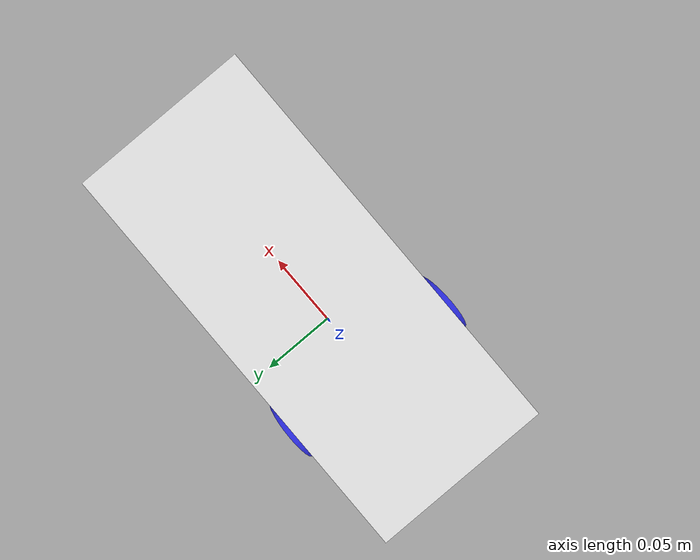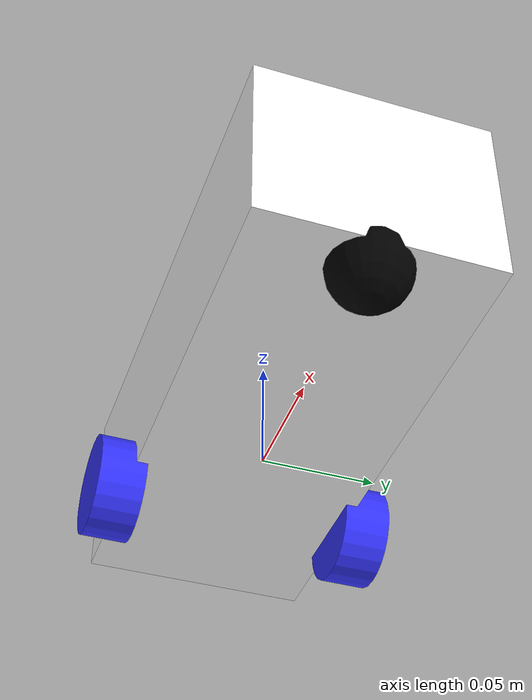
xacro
<?xml version="1.0"?>
<robot xmlns:xacro="http://www.ros.org/wiki/xacro">

    <xacro:include filename="inertial_macros.xacro" />

    <material name="white">
        <color rgba="1 1 1 1"/>
    </material>

    <material name="orange">
        <color rgba="1 0.3 0.1 1"/>
    </material>

    <material name="blue">
        <color rgba="0.2 0.2 1 1"/>
    </material>

    <material name="black">
        <color rgba="0 0 0 1"/>
    </material>

    <material name="red">
        <color rgba="1 0 0 1"/>
    </material>

    <!--BASE  LINK-->
    <link name="base_link">
    </link>

    <!-- BASE_FOOTPRINT LINK -->

    <joint name="base_footprint_joint" type="fixed">
        <parent link="base_link"/>
        <child link="base_footprint"/>
        <origin xyz="0 0 0" rpy="0 0 0"/>
    </joint>

    <link name="base_footprint">
    </link>

    <!--CHASIS LINK-->
    <joint name="chassis_joint" type="fixed">
        <parent link="base_link"/>
        <child link="chassis"/>
        <origin xyz="-0.1 0 0"/>
    </joint>

    <link name="chassis">
        <visual>
            <origin xyz="0.1175 0 0.04" rpy="0 0 0"/>
            <geometry>
                <box size="0.235 0.10 0.08"/>
            </geometry>
            <material name="white"/>
        </visual>
        <collision>
            <origin xyz="0.1175 0 0.04" rpy="0 0 0"/>
            <geometry>
                <box size="0.235 0.10 0.08"/>
            </geometry>
        </collision>
        <xacro:inertial_box mass="0.5" x="0.235" y="0.10" z="0.08">
            <origin xyz="0.1175 0 0.04" rpy="0 0 0"/>
        </xacro:inertial_box>
    </link>

    <gazebo reference="chassis">
        <material>Gazebo/white</material>
    </gazebo>

    <!--LEFT WHEEL LINK-->
    <joint name="left_wheel_joint" type="continuous">
        <parent link="base_link"/>
        <child link="left_wheel"/>
        <origin xyz="-0.04 0.055 0" rpy="-${pi/2} 0 0"/>
        <axis xyz="0 0 1"/>
    </joint>

    <link name="left_wheel">
        <visual>
            <geometry>
                <cylinder radius="0.022" length="0.02" />
            </geometry>
            <material name="blue"/>
        </visual>
        <collision>
            <geometry>
                <cylinder radius="0.022" length="0.001" />
            </geometry>
        </collision>
        <xacro:inertial_cylinder mass="0.1" length="0.02" radius="0.022">
        <origin xyz="0 0 0" rpy="0 0 0"/>
    </xacro:inertial_cylinder>
    </link>

    <gazebo reference="left_wheel">
        <material>Gazebo/Blue</material>
    </gazebo>

    <!--RIGHT WHEEL LINK-->
    <joint name="right_wheel_joint" type="continuous">
        <parent link="base_link"/>
        <child link="right_wheel"/>
        <origin xyz="-0.04 -0.055 0" rpy="${pi/2} 0 0"/>
        <axis xyz="0 0 -1"/>
    </joint>

    <link name="right_wheel">
        <visual>
            <geometry>
                <cylinder radius="0.022" length="0.02" />
            </geometry>
            <material name="blue"/>
        </visual>
        <collision>
            <geometry>
                <cylinder radius="0.022" length="0.001" />
            </geometry>
        </collision>
        <xacro:inertial_cylinder mass="0.1" length="0.02" radius="0.022">
        <origin xyz="0 0 0" rpy="0 0 0"/>
    </xacro:inertial_cylinder>
    </link>

    <gazebo reference="right_wheel">
        <material>Gazebo/Blue</material>
    </gazebo>

    <!--CASTER WHEEL LINK-->
    <joint name="caster_wheel_joint" type="fixed">
        <parent link="chassis"/>
        <child link="caster_wheel"/>
        <origin xyz="0.22 0 0"/>
    </joint>

    <link name="caster_wheel">
        <visual>
            <geometry>
                <sphere radius="0.017" />
            </geometry>
            <material name="black"/>
        </visual>
        <collision>
            <geometry>
                <sphere radius="0.017" />
            </geometry>
        </collision>
        <xacro:inertial_sphere mass="0.1" radius="0.017">
        <origin xyz="0 0 0" rpy="0 0 0"/>
    </xacro:inertial_sphere>
    </link>

    <gazebo reference="caster_wheel">
        <material>Gazebo/Black</material>
        <mu1 value="0.001"/>
        <mu2 value="0.001"/>
    </gazebo>

</robot>
